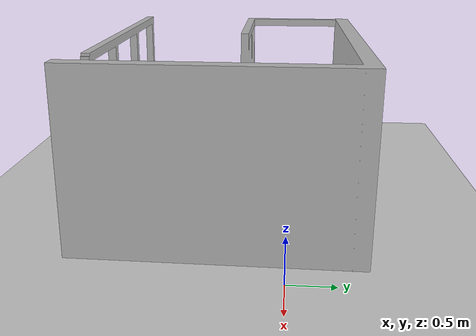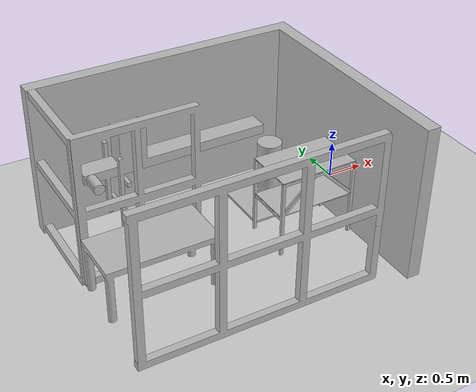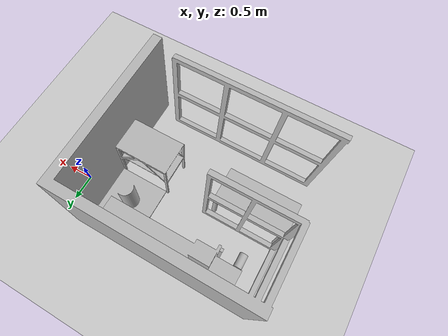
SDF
<sdf version="1.4">
 <world name="default">
  <light name="sun" type="directional">
   <pose>0 0 10 0 -0 0</pose>
   <diffuse>0.8 0.8 0.8 1</diffuse>
   <specular>0.2 0.2 0.2 1</specular>
   <attenuation>
    <range>1000</range>
    <constant>0.9</constant>
    <linear>0.01</linear>
    <quadratic>0.001</quadratic>
   </attenuation>
   <direction>-0.5 0.1 -0.9</direction>
  </light>
  <model name="ground_plane">
   <static>1</static>
   <link name="link">
    <collision name="collision">
     <geometry><plane><normal>0 0 1</normal><size>100 100</size></plane></geometry>
     <surface><friction><ode><mu>100</mu><mu2>50</mu2></ode></friction></surface>
    </collision>
    <visual name="visual">
     <cast_shadows>0</cast_shadows>
     <geometry><plane><normal>0 0 1</normal><size>100 100</size></plane></geometry>
     <material>
      <script><uri>file://media/materials/scripts/gazebo.material</uri><name>Gazebo/Grey</name></script>
     </material>
    </visual>
    <velocity_decay><linear>0</linear><angular>0</angular></velocity_decay>
   </link>
  </model>
  <physics type="ode">
   <max_step_size>0.001</max_step_size>
   <real_time_factor>1</real_time_factor>
   <real_time_update_rate>1000</real_time_update_rate>
   <gravity>0 0 -9.8</gravity>
  </physics>
  <scene><ambient>0.4 0.4 0.4 1</ambient><background>0.7 0.7 0.7 1</background><shadows>1</shadows></scene>
  <model name="scene">
   <link name="link">
    <collision name="collision">
     <geometry><mesh><uri>model://scene/meshes/table.dae</uri></mesh></geometry>
    </collision>
    <visual name="visual"><geometry><mesh><uri>model://scene/meshes/table.dae</uri></mesh></geometry></visual>
    <collision name="collision2">
     <geometry><mesh><uri>model://scene/meshes/fence1.dae</uri></mesh></geometry>
    </collision>
    <visual name="visual2"><geometry><mesh><uri>model://scene/meshes/fence1.dae</uri></mesh></geometry></visual>
    <collision name="collision3">
     <geometry><mesh><uri>model://scene/meshes/conveyorBelt.dae</uri></mesh></geometry>
    </collision>
    <visual name="visual3">
     <geometry><mesh><uri>model://scene/meshes/conveyorBelt.dae</uri></mesh></geometry>
    </visual>
    <collision name="collision4">
     <geometry><mesh><uri>model://scene/meshes/Finger.dae</uri></mesh></geometry>
    </collision>
    <visual name="visual4"><geometry><mesh><uri>model://scene/meshes/Finger.dae</uri></mesh></geometry></visual>
    <collision name="collision5">
     <geometry><mesh><uri>model://scene/meshes/foot.dae</uri></mesh></geometry>
    </collision>
    <visual name="visual5"><geometry><mesh><uri>model://scene/meshes/foot.dae</uri></mesh></geometry></visual>
    <velocity_decay><linear>0</linear><angular>0</angular></velocity_decay>
    <inertial>
     <inertia><ixx>1</ixx><ixy>0</ixy><ixz>0</ixz><iyy>1</iyy><iyz>0</iyz><izz>1</izz></inertia>
     <mass>1</mass>
    </inertial>
   </link>
   <pose>-0.999799 0 0.035406 3e-06 -2e-06 -3.9e-05</pose>
   <static>0</static>
  </model>
  <model name="WPtable">
   <link name="link">
    <collision name="collision">
     <geometry><mesh><uri>model://WPtable/meshes/WPtable.dae</uri></mesh></geometry>
    </collision>
    <visual name="visual"><geometry><mesh><uri>model://WPtable/meshes/WPtable.dae</uri></mesh></geometry></visual>
    <velocity_decay><linear>0</linear><angular>0</angular></velocity_decay>
    <inertial>
     <inertia><ixx>1</ixx><ixy>0</ixy><ixz>0</ixz><iyy>1</iyy><iyz>0</iyz><izz>1</izz></inertia>
     <mass>1</mass>
    </inertial>
   </link>
   <pose>-1.02075 -1.1514 0 0 -0 0</pose>
   <static>0</static>
  </model>
 </world>
</sdf>
